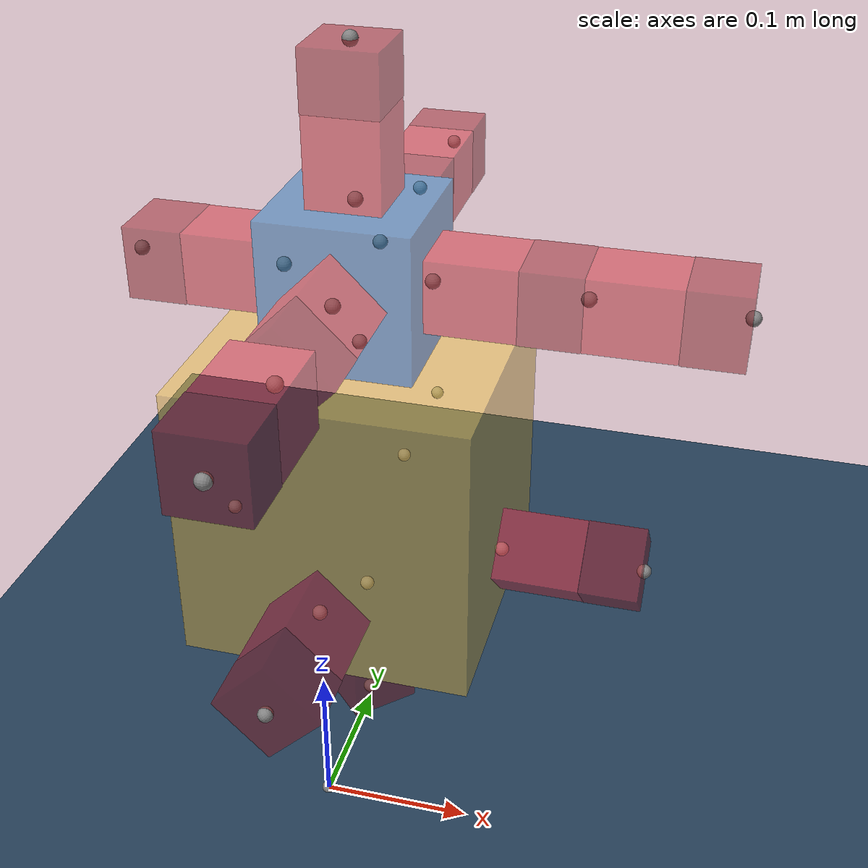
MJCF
<mujoco model="Simple Flat World">
  <compiler angle="radian"/>

  <option integrator="implicitfast"/>

  <visual>
    <global offwidth="1280" offheight="960"/>
  </visual>

  <default>
    <default class="robot1_main">
      <default class="robot1_0-15-0-main"/>
      <default class="robot1_0-5-5-main"/>
      <default class="robot1_0-2-2-main"/>
      <default class="robot1_0-18-1-main"/>
      <default class="robot1_0-9-4-main"/>
      <default class="robot1_9-16-3-main"/>
      <default class="robot1_9-8-2-main"/>
      <default class="robot1_9-14-5-main"/>
      <default class="robot1_9-3-0-main"/>
      <default class="robot1_9-4-4-main"/>
      <default class="robot1_16-11-0-main"/>
      <default class="robot1_8-13-0-main"/>
      <default class="robot1_14-6-0-main"/>
    </default>
  </default>

  <asset>
    <texture type="2d" colorspace="auto" name="floor" builtin="checker" rgb1="0.1 0.2 0.3" rgb2="0.2 0.3 0.4" width="600" height="600"/>
    <material name="floor" texture="floor" texuniform="true" texrepeat="3 3"/>
  </asset>

  <worldbody>
    <site pos="0 0 0"/>
    <camera name="ortho-cam" pos="-5 0 5" quat="0.653281 0.270598 -0.270598 -0.653281" orthographic="true" fovy="5"/>
    <light name="light" pos="0 0 1" dir="0 0 -1" type="directional" castshadow="false"/>
    <body name="floor">
      <geom name="floor" size="5 5 0.5" type="plane" material="floor"/>
    </body>
    <body name="robot1_world" pos="0 0 0.21">
      <joint type="free"/>
      <body name="robot1_core">
        <geom name="robot1_core" size="0.1 0.1 0.1" pos="0 0.1 0" type="box" mass="1" rgba="0.992157 0.792157 0.25098 0.5"/>
        <site name="robot1_core-front" pos="0 0.2 -0.05"/>
        <site name="robot1_core-back" pos="0 0 -0.05" quat="0 0 0 1"/>
        <site name="robot1_core-left" pos="-0.1 0.1 -0.05" quat="0.707107 0 0 0.707107"/>
        <site name="robot1_core-right" pos="0.1 0.1 -0.05" quat="-0.707107 0 0 0.707107"/>
        <site name="robot1_core-top" pos="0 0.1 0.1" quat="0.707107 0.707107 0 0"/>
        <site name="robot1_core-bottom" pos="0 0.1 -0.1" quat="0 0 -0.707107 0.707107"/>
        <body name="robot1_0-15-0-hinge" pos="0 0.2 -0.05" quat="0.382911 0 0.923785 0">
          <body name="robot1_0-15-0-stator" pos="0 0.03 0">
            <geom name="robot1_0-15-0-stator" size="0.02475 0.0297 0.02475" type="box" mass="0.02" rgba="0.87451 0.160784 0.207843 0.5"/>
          </body>
          <body name="robot1_0-15-0-rotor" pos="0 0.08 0">
            <joint name="robot1_0-15-0-servo" pos="0 -0.02 0" axis="0 0 1"/>
            <geom name="robot1_0-15-0-rotor" size="0.025 0.02 0.025" type="box" mass="0.04" rgba="0.627451 0.0941176 0.129412 0.5"/>
            <site name="robot1_0-15-0-hinge-front" pos="0 0.02 0"/>
          </body>
        </body>
        <body name="robot1_0-5-5-hinge" pos="0 0.1 -0.1" quat="0.270759 -0.270759 0.653215 -0.653215">
          <body name="robot1_0-5-5-stator" pos="0 0.03 0">
            <geom name="robot1_0-5-5-stator" size="0.02475 0.0297 0.02475" type="box" mass="0.02" rgba="0.87451 0.160784 0.207843 0.5"/>
          </body>
          <body name="robot1_0-5-5-rotor" pos="0 0.08 0">
            <joint name="robot1_0-5-5-servo" pos="0 -0.02 0" axis="0 0 1"/>
            <geom name="robot1_0-5-5-rotor" size="0.025 0.02 0.025" type="box" mass="0.04" rgba="0.627451 0.0941176 0.129412 0.5"/>
            <site name="robot1_0-5-5-hinge-front" pos="0 0.02 0"/>
          </body>
        </body>
        <body name="robot1_0-2-2-hinge" pos="0.1 0.1 -0.05" quat="0.270759 -0.653215 -0.653215 -0.270759">
          <body name="robot1_0-2-2-stator" pos="0 0.03 0">
            <geom name="robot1_0-2-2-stator" size="0.02475 0.0297 0.02475" type="box" mass="0.02" rgba="0.87451 0.160784 0.207843 0.5"/>
          </body>
          <body name="robot1_0-2-2-rotor" pos="0 0.08 0">
            <joint name="robot1_0-2-2-servo" pos="0 -0.02 0" axis="0 0 1"/>
            <geom name="robot1_0-2-2-rotor" size="0.025 0.02 0.025" type="box" mass="0.04" rgba="0.627451 0.0941176 0.129412 0.5"/>
            <site name="robot1_0-2-2-hinge-front" pos="0 0.02 0"/>
          </body>
        </body>
        <body name="robot1_0-18-1-hinge" pos="0 0 -0.05" quat="0 -0.923785 0 0.382911">
          <body name="robot1_0-18-1-stator" pos="0 0.03 0">
            <geom name="robot1_0-18-1-stator" size="0.02475 0.0297 0.02475" type="box" mass="0.02" rgba="0.87451 0.160784 0.207843 0.5"/>
          </body>
          <body name="robot1_0-18-1-rotor" pos="0 0.08 0">
            <joint name="robot1_0-18-1-servo" pos="0 -0.02 0" axis="0 0 1"/>
            <geom name="robot1_0-18-1-rotor" size="0.025 0.02 0.025" type="box" mass="0.04" rgba="0.627451 0.0941176 0.129412 0.5"/>
            <site name="robot1_0-18-1-hinge-front" pos="0 0.02 0"/>
          </body>
        </body>
        <body name="robot1_0-9-4-brick" pos="0 0.1 0.1" quat="-0.5 -0.5 0.5 0.5">
          <geom name="robot1_0-9-4-brick" size="0.05 0.05 0.05" pos="0 0.05 0" type="box" mass="0.055" rgba="0.109804 0.466667 0.764706 0.5"/>
          <site name="robot1_0-9-4-brick-front" pos="0 0.1 0"/>
          <site name="robot1_0-9-4-brick-left" pos="-0.05 0.05 0" quat="0.707107 0 0 0.707107"/>
          <site name="robot1_0-9-4-brick-right" pos="0.05 0.05 0" quat="-0.707107 0 0 0.707107"/>
          <site name="robot1_0-9-4-brick-top" pos="0 0.05 0.05" quat="0.707107 0.707107 0 0"/>
          <site name="robot1_0-9-4-brick-bottom" pos="0 0.05 -0.05" quat="0 0 -0.707107 0.707107"/>
          <body name="robot1_9-16-3-hinge" pos="-0.05 0.05 0" quat="0 -0.707107 0.707107 0">
            <body name="robot1_9-16-3-stator" pos="0 0.03 0">
              <geom name="robot1_9-16-3-stator" size="0.02475 0.0297 0.02475" type="box" mass="0.02" rgba="0.87451 0.160784 0.207843 0.5"/>
            </body>
            <body name="robot1_9-16-3-rotor" pos="0 0.08 0">
              <joint name="robot1_9-16-3-servo" pos="0 -0.02 0" axis="0 0 1"/>
              <geom name="robot1_9-16-3-rotor" size="0.025 0.02 0.025" type="box" mass="0.04" rgba="0.627451 0.0941176 0.129412 0.5"/>
              <site name="robot1_9-16-3-hinge-front" pos="0 0.02 0"/>
              <body name="robot1_16-11-0-hinge" pos="0 0.02 0" quat="-0.707107 0 0.707107 0">
                <body name="robot1_16-11-0-stator" pos="0 0.03 0">
                  <geom name="robot1_16-11-0-stator" size="0.02475 0.0297 0.02475" type="box" mass="0.02" rgba="0.87451 0.160784 0.207843 0.5"/>
                </body>
                <body name="robot1_16-11-0-rotor" pos="0 0.08 0">
                  <joint name="robot1_16-11-0-servo" pos="0 -0.02 0" axis="0 0 1"/>
                  <geom name="robot1_16-11-0-rotor" size="0.025 0.02 0.025" type="box" mass="0.04" rgba="0.627451 0.0941176 0.129412 0.5"/>
                  <site name="robot1_16-11-0-hinge-front" pos="0 0.02 0"/>
                </body>
              </body>
            </body>
          </body>
          <body name="robot1_9-8-2-hinge" pos="0.05 0.05 0" quat="-0.653215 -0.270759 -0.270759 0.653215">
            <body name="robot1_9-8-2-stator" pos="0 0.03 0">
              <geom name="robot1_9-8-2-stator" size="0.02475 0.0297 0.02475" type="box" mass="0.02" rgba="0.87451 0.160784 0.207843 0.5"/>
            </body>
            <body name="robot1_9-8-2-rotor" pos="0 0.08 0">
              <joint name="robot1_9-8-2-servo" pos="0 -0.02 0" axis="0 0 1"/>
              <geom name="robot1_9-8-2-rotor" size="0.025 0.02 0.025" type="box" mass="0.04" rgba="0.627451 0.0941176 0.129412 0.5"/>
              <site name="robot1_9-8-2-hinge-front" pos="0 0.02 0"/>
              <body name="robot1_8-13-0-hinge" pos="0 0.02 0" quat="-0.923785 0 0.382911 0">
                <body name="robot1_8-13-0-stator" pos="0 0.03 0">
                  <geom name="robot1_8-13-0-stator" size="0.02475 0.0297 0.02475" type="box" mass="0.02" rgba="0.87451 0.160784 0.207843 0.5"/>
                </body>
                <body name="robot1_8-13-0-rotor" pos="0 0.08 0">
                  <joint name="robot1_8-13-0-servo" pos="0 -0.02 0" axis="0 0 1"/>
                  <geom name="robot1_8-13-0-rotor" size="0.025 0.02 0.025" type="box" mass="0.04" rgba="0.627451 0.0941176 0.129412 0.5"/>
                  <site name="robot1_8-13-0-hinge-front" pos="0 0.02 0"/>
                </body>
              </body>
            </body>
          </body>
          <body name="robot1_9-14-5-hinge" pos="0 0.05 -0.05" quat="0.5 -0.5 -0.5 0.5">
            <body name="robot1_9-14-5-stator" pos="0 0.03 0">
              <geom name="robot1_9-14-5-stator" size="0.02475 0.0297 0.02475" type="box" mass="0.02" rgba="0.87451 0.160784 0.207843 0.5"/>
            </body>
            <body name="robot1_9-14-5-rotor" pos="0 0.08 0">
              <joint name="robot1_9-14-5-servo" pos="0 -0.02 0" axis="0 0 1"/>
              <geom name="robot1_9-14-5-rotor" size="0.025 0.02 0.025" type="box" mass="0.04" rgba="0.627451 0.0941176 0.129412 0.5"/>
              <site name="robot1_9-14-5-hinge-front" pos="0 0.02 0"/>
              <body name="robot1_14-6-0-hinge" pos="0 0.02 0" quat="0 0 1 0">
                <body name="robot1_14-6-0-stator" pos="0 0.03 0">
                  <geom name="robot1_14-6-0-stator" size="0.02475 0.0297 0.02475" type="box" mass="0.02" rgba="0.87451 0.160784 0.207843 0.5"/>
                </body>
                <body name="robot1_14-6-0-rotor" pos="0 0.08 0">
                  <joint name="robot1_14-6-0-servo" pos="0 -0.02 0" axis="0 0 1"/>
                  <geom name="robot1_14-6-0-rotor" size="0.025 0.02 0.025" type="box" mass="0.04" rgba="0.627451 0.0941176 0.129412 0.5"/>
                  <site name="robot1_14-6-0-hinge-front" pos="0 0.02 0"/>
                </body>
              </body>
            </body>
          </body>
          <body name="robot1_9-3-0-hinge" pos="0 0.1 0" quat="-0.707107 0 0.707107 0">
            <body name="robot1_9-3-0-stator" pos="0 0.03 0">
              <geom name="robot1_9-3-0-stator" size="0.02475 0.0297 0.02475" type="box" mass="0.02" rgba="0.87451 0.160784 0.207843 0.5"/>
            </body>
            <body name="robot1_9-3-0-rotor" pos="0 0.08 0">
              <joint name="robot1_9-3-0-servo" pos="0 -0.02 0" axis="0 0 1"/>
              <geom name="robot1_9-3-0-rotor" size="0.025 0.02 0.025" type="box" mass="0.04" rgba="0.627451 0.0941176 0.129412 0.5"/>
              <site name="robot1_9-3-0-hinge-front" pos="0 0.02 0"/>
            </body>
          </body>
          <body name="robot1_9-4-4-hinge" pos="0 0.05 0.05" quat="0 0 0.707107 0.707107">
            <body name="robot1_9-4-4-stator" pos="0 0.03 0">
              <geom name="robot1_9-4-4-stator" size="0.02475 0.0297 0.02475" type="box" mass="0.02" rgba="0.87451 0.160784 0.207843 0.5"/>
            </body>
            <body name="robot1_9-4-4-rotor" pos="0 0.08 0">
              <joint name="robot1_9-4-4-servo" pos="0 -0.02 0" axis="0 0 1"/>
              <geom name="robot1_9-4-4-rotor" size="0.025 0.02 0.025" type="box" mass="0.04" rgba="0.627451 0.0941176 0.129412 0.5"/>
              <site name="robot1_9-4-4-hinge-front" pos="0 0.02 0"/>
            </body>
          </body>
        </body>
      </body>
    </body>
  </worldbody>

  <contact>
    <exclude body1="robot1_0-15-0-stator" body2="robot1_0-15-0-rotor"/>
    <exclude body1="robot1_0-5-5-stator" body2="robot1_0-5-5-rotor"/>
    <exclude body1="robot1_0-2-2-stator" body2="robot1_0-2-2-rotor"/>
    <exclude body1="robot1_0-18-1-stator" body2="robot1_0-18-1-rotor"/>
    <exclude body1="robot1_9-16-3-stator" body2="robot1_9-16-3-rotor"/>
    <exclude body1="robot1_16-11-0-stator" body2="robot1_16-11-0-rotor"/>
    <exclude body1="robot1_9-8-2-stator" body2="robot1_9-8-2-rotor"/>
    <exclude body1="robot1_8-13-0-stator" body2="robot1_8-13-0-rotor"/>
    <exclude body1="robot1_9-14-5-stator" body2="robot1_9-14-5-rotor"/>
    <exclude body1="robot1_14-6-0-stator" body2="robot1_14-6-0-rotor"/>
    <exclude body1="robot1_9-3-0-stator" body2="robot1_9-3-0-rotor"/>
    <exclude body1="robot1_9-4-4-stator" body2="robot1_9-4-4-rotor"/>
  </contact>

  <actuator>
    <general name="robot1_0-15-0-servo" joint="robot1_0-15-0-servo" ctrlrange="-1.5708 1.5708" dynprm="0 0 0 0 0 0 0 0 0 0" biastype="affine" biasprm="0 -1 -1"/>
    <general name="robot1_0-5-5-servo" joint="robot1_0-5-5-servo" ctrlrange="-1.5708 1.5708" dynprm="0 0 0 0 0 0 0 0 0 0" biastype="affine" biasprm="0 -1 -1"/>
    <general name="robot1_0-2-2-servo" joint="robot1_0-2-2-servo" ctrlrange="-1.5708 1.5708" dynprm="0 0 0 0 0 0 0 0 0 0" biastype="affine" biasprm="0 -1 -1"/>
    <general name="robot1_0-18-1-servo" joint="robot1_0-18-1-servo" ctrlrange="-1.5708 1.5708" dynprm="0 0 0 0 0 0 0 0 0 0" biastype="affine" biasprm="0 -1 -1"/>
    <general name="robot1_9-16-3-servo" joint="robot1_9-16-3-servo" ctrlrange="-1.5708 1.5708" dynprm="0 0 0 0 0 0 0 0 0 0" biastype="affine" biasprm="0 -1 -1"/>
    <general name="robot1_9-8-2-servo" joint="robot1_9-8-2-servo" ctrlrange="-1.5708 1.5708" dynprm="0 0 0 0 0 0 0 0 0 0" biastype="affine" biasprm="0 -1 -1"/>
    <general name="robot1_9-14-5-servo" joint="robot1_9-14-5-servo" ctrlrange="-1.5708 1.5708" dynprm="0 0 0 0 0 0 0 0 0 0" biastype="affine" biasprm="0 -1 -1"/>
    <general name="robot1_9-3-0-servo" joint="robot1_9-3-0-servo" ctrlrange="-1.5708 1.5708" dynprm="0 0 0 0 0 0 0 0 0 0" biastype="affine" biasprm="0 -1 -1"/>
    <general name="robot1_9-4-4-servo" joint="robot1_9-4-4-servo" ctrlrange="-1.5708 1.5708" dynprm="0 0 0 0 0 0 0 0 0 0" biastype="affine" biasprm="0 -1 -1"/>
    <general name="robot1_16-11-0-servo" joint="robot1_16-11-0-servo" ctrlrange="-1.5708 1.5708" dynprm="0 0 0 0 0 0 0 0 0 0" biastype="affine" biasprm="0 -1 -1"/>
    <general name="robot1_8-13-0-servo" joint="robot1_8-13-0-servo" ctrlrange="-1.5708 1.5708" dynprm="0 0 0 0 0 0 0 0 0 0" biastype="affine" biasprm="0 -1 -1"/>
    <general name="robot1_14-6-0-servo" joint="robot1_14-6-0-servo" ctrlrange="-1.5708 1.5708" dynprm="0 0 0 0 0 0 0 0 0 0" biastype="affine" biasprm="0 -1 -1"/>
  </actuator>
</mujoco>
